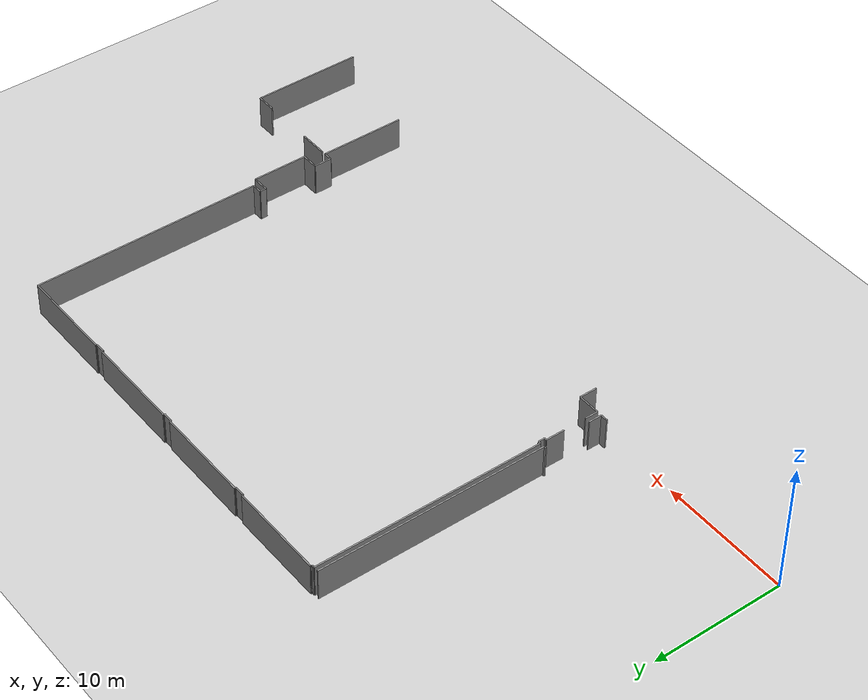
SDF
<sdf version="1.6">
 <world name="default">
  <model name="ground_plane">
   <static>1</static>
   <link name="link">
    <collision name="collision">
     <geometry><plane><normal>0 0 1</normal><size>100 100</size></plane></geometry>
     <surface><friction><ode><mu>100</mu><mu2>50</mu2></ode></friction></surface>
    </collision>
    <visual name="visual">
     <cast_shadows>0</cast_shadows>
     <geometry><plane><normal>0 0 1</normal><size>100 100</size></plane></geometry>
     <material>
      <script><uri>file://media/materials/scripts/gazebo.material</uri><name>Gazebo/Grey</name></script>
     </material>
    </visual>
   </link>
  </model>
  <model name="50057023">
   <static>1</static>
   <link name="Wall_98">
    <collision name="Wall_98_Collision">
     <geometry><box><size>17.4715691257 0.1 2.5</size></box></geometry>
     <pose>8.73578456286 0 1.25 0 0 0</pose>
    </collision>
    <visual name="Wall_98_Visual">
     <pose>8.73578456286 0 1.25 0 0 0</pose>
     <geometry><box><size>17.4715691257 0.1 2.5</size></box></geometry>
     <material>
      <script><uri>file://media/materials/scripts/gazebo.material</uri><name>Gazebo/Grey</name></script>
      <ambient>1 1 1 1</ambient>
     </material>
    </visual>
    <pose>71.8441507746 -0.122937470454 0 0 0 -1.57079632679</pose>
   </link>
   <link name="Wall_99">
    <collision name="Wall_99_Collision">
     <geometry><box><size>0.203163675399 0.1 2.5</size></box></geometry>
     <pose>0.1015818377 0 1.25 0 0 0</pose>
    </collision>
    <visual name="Wall_99_Visual">
     <pose>0.1015818377 0 1.25 0 0 0</pose>
     <geometry><box><size>0.203163675399 0.1 2.5</size></box></geometry>
     <material>
      <script><uri>file://media/materials/scripts/gazebo.material</uri><name>Gazebo/Grey</name></script>
      <ambient>1 1 1 1</ambient>
     </material>
    </visual>
    <pose>71.8441507746 -17.5945065962 0 0 0 3.14159265359</pose>
   </link>
   <link name="Wall_129">
    <collision name="Wall_129_Collision">
     <geometry><box><size>1.00289093165 0.1 2.5</size></box></geometry>
     <pose>0.501445465825 0 1.25 0 0 0</pose>
    </collision>
    <visual name="Wall_129_Visual">
     <pose>0.501445465825 0 1.25 0 0 0</pose>
     <geometry><box><size>1.00289093165 0.1 2.5</size></box></geometry>
     <material>
      <script><uri>file://media/materials/scripts/gazebo.material</uri><name>Gazebo/Grey</name></script>
      <ambient>1 1 1 1</ambient>
     </material>
    </visual>
    <pose>71.8352789984 -21.2718578387 0 0 0 -1.57079632679</pose>
   </link>
   <link name="Wall_130">
    <collision name="Wall_130_Collision">
     <geometry><box><size>0.57146912812 0.1 2.5</size></box></geometry>
     <pose>0.28573456406 0 1.25 0 0 0</pose>
    </collision>
    <visual name="Wall_130_Visual">
     <pose>0.28573456406 0 1.25 0 0 0</pose>
     <geometry><box><size>0.57146912812 0.1 2.5</size></box></geometry>
     <material>
      <script><uri>file://media/materials/scripts/gazebo.material</uri><name>Gazebo/Grey</name></script>
      <ambient>1 1 1 1</ambient>
     </material>
    </visual>
    <pose>71.8352789984 -22.2747487703 0 0 0 3.14159265359</pose>
   </link>
   <link name="Wall_379">
    <collision name="Wall_379_Collision">
     <geometry><box><size>1.33330122595 0.1 2.5</size></box></geometry>
     <pose>0.666650612976 0 1.25 0 0 0</pose>
    </collision>
    <visual name="Wall_379_Visual">
     <pose>0.666650612976 0 1.25 0 0 0</pose>
     <geometry><box><size>1.33330122595 0.1 2.5</size></box></geometry>
     <material>
      <script><uri>file://media/materials/scripts/gazebo.material</uri><name>Gazebo/Grey</name></script>
      <ambient>1 1 1 1</ambient>
     </material>
    </visual>
    <pose>73.9159640009 -23.6112184878 0 0 0 1.57079632679</pose>
   </link>
   <link name="Wall_380">
    <collision name="Wall_380_Collision">
     <geometry><box><size>1.69995906309 0.1 2.5</size></box></geometry>
     <pose>0.849979531545 0 1.25 0 0 0</pose>
    </collision>
    <visual name="Wall_380_Visual">
     <pose>0.849979531545 0 1.25 0 0 0</pose>
     <geometry><box><size>1.69995906309 0.1 2.5</size></box></geometry>
     <material>
      <script><uri>file://media/materials/scripts/gazebo.material</uri><name>Gazebo/Grey</name></script>
      <ambient>1 1 1 1</ambient>
     </material>
    </visual>
    <pose>73.9159640009 -22.2779172618 0 0 0 3.14159265359</pose>
   </link>
   <link name="Wall_381">
    <collision name="Wall_381_Collision">
     <geometry><box><size>1.00010265912 0.1 2.5</size></box></geometry>
     <pose>0.500051329562 0 1.25 0 0 0</pose>
    </collision>
    <visual name="Wall_381_Visual">
     <pose>0.500051329562 0 1.25 0 0 0</pose>
     <geometry><box><size>1.00010265912 0.1 2.5</size></box></geometry>
     <material>
      <script><uri>file://media/materials/scripts/gazebo.material</uri><name>Gazebo/Grey</name></script>
      <ambient>1 1 1 1</ambient>
     </material>
    </visual>
    <pose>72.2160049378 -22.2779172618 0 0 0 1.57079632679</pose>
   </link>
   <link name="Wall_382">
    <collision name="Wall_382_Collision">
     <geometry><box><size>1.45661891539 0.1 2.5</size></box></geometry>
     <pose>0.728309457694 0 1.25 0 0 0</pose>
    </collision>
    <visual name="Wall_382_Visual">
     <pose>0.728309457694 0 1.25 0 0 0</pose>
     <geometry><box><size>1.45661891539 0.1 2.5</size></box></geometry>
     <material>
      <script><uri>file://media/materials/scripts/gazebo.material</uri><name>Gazebo/Grey</name></script>
      <ambient>1 1 1 1</ambient>
     </material>
    </visual>
    <pose>72.2160049378 -19.5257655392 0 0 0 1.57079632679</pose>
   </link>
   <link name="Wall_383">
    <collision name="Wall_383_Collision">
     <geometry><box><size>0.175280950142 0.1 2.5</size></box></geometry>
     <pose>0.0876404750709 0 1.25 0 0 0</pose>
    </collision>
    <visual name="Wall_383_Visual">
     <pose>0.0876404750709 0 1.25 0 0 0</pose>
     <geometry><box><size>0.175280950142 0.1 2.5</size></box></geometry>
     <material>
      <script><uri>file://media/materials/scripts/gazebo.material</uri><name>Gazebo/Grey</name></script>
      <ambient>1 1 1 1</ambient>
     </material>
    </visual>
    <pose>72.2160049378 -18.0691466238 0 0 0 0.0</pose>
   </link>
   <link name="Wall_384">
    <collision name="Wall_384_Collision">
     <geometry><box><size>0.474006329379 0.1 2.5</size></box></geometry>
     <pose>0.237003164689 0 1.25 0 0 0</pose>
    </collision>
    <visual name="Wall_384_Visual">
     <pose>0.237003164689 0 1.25 0 0 0</pose>
     <geometry><box><size>0.474006329379 0.1 2.5</size></box></geometry>
     <material>
      <script><uri>file://media/materials/scripts/gazebo.material</uri><name>Gazebo/Grey</name></script>
      <ambient>1 1 1 1</ambient>
     </material>
    </visual>
    <pose>72.3912858879 -18.0691466238 0 0 0 1.57079632679</pose>
   </link>
   <link name="Wall_385">
    <collision name="Wall_385_Collision">
     <geometry><box><size>0.18896883345 0.1 2.5</size></box></geometry>
     <pose>0.0944844167251 0 1.25 0 0 0</pose>
    </collision>
    <visual name="Wall_385_Visual">
     <pose>0.0944844167251 0 1.25 0 0 0</pose>
     <geometry><box><size>0.18896883345 0.1 2.5</size></box></geometry>
     <material>
      <script><uri>file://media/materials/scripts/gazebo.material</uri><name>Gazebo/Grey</name></script>
      <ambient>1 1 1 1</ambient>
     </material>
    </visual>
    <pose>72.3912858879 -17.5951402945 0 0 0 3.14159265359</pose>
   </link>
   <link name="Wall_386">
    <collision name="Wall_386_Collision">
     <geometry><box><size>17.4659925807 0.1 2.5</size></box></geometry>
     <pose>8.73299629033 0 1.25 0 0 0</pose>
    </collision>
    <visual name="Wall_386_Visual">
     <pose>8.73299629033 0 1.25 0 0 0</pose>
     <geometry><box><size>17.4659925807 0.1 2.5</size></box></geometry>
     <material>
      <script><uri>file://media/materials/scripts/gazebo.material</uri><name>Gazebo/Grey</name></script>
      <ambient>1 1 1 1</ambient>
     </material>
    </visual>
    <pose>72.2023170545 -17.5951402945 0 0 0 1.57079632679</pose>
   </link>
   <link name="Wall_387">
    <collision name="Wall_387_Collision">
     <geometry><box><size>0.212415670599 0.1 2.5</size></box></geometry>
     <pose>0.106207835299 0 1.25 0 0 0</pose>
    </collision>
    <visual name="Wall_387_Visual">
     <pose>0.106207835299 0 1.25 0 0 0</pose>
     <geometry><box><size>0.212415670599 0.1 2.5</size></box></geometry>
     <material>
      <script><uri>file://media/materials/scripts/gazebo.material</uri><name>Gazebo/Grey</name></script>
      <ambient>1 1 1 1</ambient>
     </material>
    </visual>
    <pose>72.2023170545 -0.129147713807 0 0 0 0.0</pose>
   </link>
   <link name="Wall_388">
    <collision name="Wall_388_Collision">
     <geometry><box><size>0.105447397338 0.1 2.5</size></box></geometry>
     <pose>0.0527236986689 0 1.25 0 0 0</pose>
    </collision>
    <visual name="Wall_388_Visual">
     <pose>0.0527236986689 0 1.25 0 0 0</pose>
     <geometry><box><size>0.105447397338 0.1 2.5</size></box></geometry>
     <material>
      <script><uri>file://media/materials/scripts/gazebo.material</uri><name>Gazebo/Grey</name></script>
      <ambient>1 1 1 1</ambient>
     </material>
    </visual>
    <pose>72.4147327251 -0.129147713807 0 0 0 1.57079632679</pose>
   </link>
   <link name="Wall_389">
    <collision name="Wall_389_Collision">
     <geometry><box><size>7.26826603669 0.1 2.5</size></box></geometry>
     <pose>3.63413301834 0 1.25 0 0 0</pose>
    </collision>
    <visual name="Wall_389_Visual">
     <pose>3.63413301834 0 1.25 0 0 0</pose>
     <geometry><box><size>7.26826603669 0.1 2.5</size></box></geometry>
     <material>
      <script><uri>file://media/materials/scripts/gazebo.material</uri><name>Gazebo/Grey</name></script>
      <ambient>1 1 1 1</ambient>
     </material>
    </visual>
    <pose>72.4147327251 -0.0237003164689 0 0 0 0.0</pose>
   </link>
   <link name="Wall_390">
    <collision name="Wall_390_Collision">
     <geometry><box><size>0.0849155723753 0.1 2.5</size></box></geometry>
     <pose>0.0424577861877 0 1.25 0 0 0</pose>
    </collision>
    <visual name="Wall_390_Visual">
     <pose>0.0424577861877 0 1.25 0 0 0</pose>
     <geometry><box><size>0.0849155723753 0.1 2.5</size></box></geometry>
     <material>
      <script><uri>file://media/materials/scripts/gazebo.material</uri><name>Gazebo/Grey</name></script>
      <ambient>1 1 1 1</ambient>
     </material>
    </visual>
    <pose>79.6829987618 -0.0237003164689 0 0 0 -1.57079632679</pose>
   </link>
   <link name="Wall_391">
    <collision name="Wall_391_Collision">
     <geometry><box><size>0.775393241481 0.1 2.5</size></box></geometry>
     <pose>0.38769662074 0 1.25 0 0 0</pose>
    </collision>
    <visual name="Wall_391_Visual">
     <pose>0.38769662074 0 1.25 0 0 0</pose>
     <geometry><box><size>0.775393241481 0.1 2.5</size></box></geometry>
     <material>
      <script><uri>file://media/materials/scripts/gazebo.material</uri><name>Gazebo/Grey</name></script>
      <ambient>1 1 1 1</ambient>
     </material>
    </visual>
    <pose>79.6829987618 -0.108615888844 0 0 0 0.0</pose>
   </link>
   <link name="Wall_392">
    <collision name="Wall_392_Collision">
     <geometry><box><size>0.0941675675744 0.1 2.5</size></box></geometry>
     <pose>0.0470837837872 0 1.25 0 0 0</pose>
    </collision>
    <visual name="Wall_392_Visual">
     <pose>0.0470837837872 0 1.25 0 0 0</pose>
     <geometry><box><size>0.0941675675744 0.1 2.5</size></box></geometry>
     <material>
      <script><uri>file://media/materials/scripts/gazebo.material</uri><name>Gazebo/Grey</name></script>
      <ambient>1 1 1 1</ambient>
     </material>
    </visual>
    <pose>80.4583920032 -0.108615888844 0 0 0 1.57079632679</pose>
   </link>
   <link name="Wall_393">
    <collision name="Wall_393_Collision">
     <geometry><box><size>7.29716267923 0.1 2.5</size></box></geometry>
     <pose>3.64858133961 0 1.25 0 0 0</pose>
    </collision>
    <visual name="Wall_393_Visual">
     <pose>3.64858133961 0 1.25 0 0 0</pose>
     <geometry><box><size>7.29716267923 0.1 2.5</size></box></geometry>
     <material>
      <script><uri>file://media/materials/scripts/gazebo.material</uri><name>Gazebo/Grey</name></script>
      <ambient>1 1 1 1</ambient>
     </material>
    </visual>
    <pose>80.4583920032 -0.0144483212698 0 0 0 0.0</pose>
   </link>
   <link name="Wall_394">
    <collision name="Wall_394_Collision">
     <geometry><box><size>0.0941675675744 0.1 2.5</size></box></geometry>
     <pose>0.0470837837872 0 1.25 0 0 0</pose>
    </collision>
    <visual name="Wall_394_Visual">
     <pose>0.0470837837872 0 1.25 0 0 0</pose>
     <geometry><box><size>0.0941675675744 0.1 2.5</size></box></geometry>
     <material>
      <script><uri>file://media/materials/scripts/gazebo.material</uri><name>Gazebo/Grey</name></script>
      <ambient>1 1 1 1</ambient>
     </material>
    </visual>
    <pose>87.7555546825 -0.0144483212698 0 0 0 -1.57079632679</pose>
   </link>
   <link name="Wall_395">
    <collision name="Wall_395_Collision">
     <geometry><box><size>0.771464312013 0.1 2.5</size></box></geometry>
     <pose>0.385732156006 0 1.25 0 0 0</pose>
    </collision>
    <visual name="Wall_395_Visual">
     <pose>0.385732156006 0 1.25 0 0 0</pose>
     <geometry><box><size>0.771464312013 0.1 2.5</size></box></geometry>
     <material>
      <script><uri>file://media/materials/scripts/gazebo.material</uri><name>Gazebo/Grey</name></script>
      <ambient>1 1 1 1</ambient>
     </material>
    </visual>
    <pose>87.7555546825 -0.108615888844 0 0 0 0.0</pose>
   </link>
   <link name="Wall_396">
    <collision name="Wall_396_Collision">
     <geometry><box><size>0.0987301953438 0.1 2.5</size></box></geometry>
     <pose>0.0493650976719 0 1.25 0 0 0</pose>
    </collision>
    <visual name="Wall_396_Visual">
     <pose>0.0493650976719 0 1.25 0 0 0</pose>
     <geometry><box><size>0.0987301953438 0.1 2.5</size></box></geometry>
     <material>
      <script><uri>file://media/materials/scripts/gazebo.material</uri><name>Gazebo/Grey</name></script>
      <ambient>1 1 1 1</ambient>
     </material>
    </visual>
    <pose>88.5270189945 -0.108615888844 0 0 0 1.57079632679</pose>
   </link>
   <link name="Wall_397">
    <collision name="Wall_397_Collision">
     <geometry><box><size>7.3154131903 0.1 2.5</size></box></geometry>
     <pose>3.65770659515 0 1.25 0 0 0</pose>
    </collision>
    <visual name="Wall_397_Visual">
     <pose>3.65770659515 0 1.25 0 0 0</pose>
     <geometry><box><size>7.3154131903 0.1 2.5</size></box></geometry>
     <material>
      <script><uri>file://media/materials/scripts/gazebo.material</uri><name>Gazebo/Grey</name></script>
      <ambient>1 1 1 1</ambient>
     </material>
    </visual>
    <pose>88.5270189945 -0.00988569350041 0 0 0 0.0</pose>
   </link>
   <link name="Wall_398">
    <collision name="Wall_398_Collision">
     <geometry><box><size>0.0987301953438 0.1 2.5</size></box></geometry>
     <pose>0.0493650976719 0 1.25 0 0 0</pose>
    </collision>
    <visual name="Wall_398_Visual">
     <pose>0.0493650976719 0 1.25 0 0 0</pose>
     <geometry><box><size>0.0987301953438 0.1 2.5</size></box></geometry>
     <material>
      <script><uri>file://media/materials/scripts/gazebo.material</uri><name>Gazebo/Grey</name></script>
      <ambient>1 1 1 1</ambient>
     </material>
    </visual>
    <pose>95.8424321848 -0.00988569350041 0 0 0 -1.57079632679</pose>
   </link>
   <link name="Wall_399">
    <collision name="Wall_399_Collision">
     <geometry><box><size>0.724697377376 0.1 2.5</size></box></geometry>
     <pose>0.362348688688 0 1.25 0 0 0</pose>
    </collision>
    <visual name="Wall_399_Visual">
     <pose>0.362348688688 0 1.25 0 0 0</pose>
     <geometry><box><size>0.724697377376 0.1 2.5</size></box></geometry>
     <material>
      <script><uri>file://media/materials/scripts/gazebo.material</uri><name>Gazebo/Grey</name></script>
      <ambient>1 1 1 1</ambient>
     </material>
    </visual>
    <pose>95.8424321848 -0.108615888844 0 0 0 0.0</pose>
   </link>
   <link name="Wall_400">
    <collision name="Wall_400_Collision">
     <geometry><box><size>0.101391728209 0.1 2.5</size></box></geometry>
     <pose>0.0506958641047 0 1.25 0 0 0</pose>
    </collision>
    <visual name="Wall_400_Visual">
     <pose>0.0506958641047 0 1.25 0 0 0</pose>
     <geometry><box><size>0.101391728209 0.1 2.5</size></box></geometry>
     <material>
      <script><uri>file://media/materials/scripts/gazebo.material</uri><name>Gazebo/Grey</name></script>
      <ambient>1 1 1 1</ambient>
     </material>
    </visual>
    <pose>96.5671295622 -0.108615888844 0 0 0 1.57079632679</pose>
   </link>
   <link name="Wall_401">
    <collision name="Wall_401_Collision">
     <geometry><box><size>7.31883516113 0.1 2.5</size></box></geometry>
     <pose>3.65941758057 0 1.25 0 0 0</pose>
    </collision>
    <visual name="Wall_401_Visual">
     <pose>3.65941758057 0 1.25 0 0 0</pose>
     <geometry><box><size>7.31883516113 0.1 2.5</size></box></geometry>
     <material>
      <script><uri>file://media/materials/scripts/gazebo.material</uri><name>Gazebo/Grey</name></script>
      <ambient>1 1 1 1</ambient>
     </material>
    </visual>
    <pose>96.5671295622 -0.00722416063492 0 0 0 0.0</pose>
   </link>
   <link name="Wall_402">
    <collision name="Wall_402_Collision">
     <geometry><box><size>17.5506546737 0.1 2.5</size></box></geometry>
     <pose>8.77532733686 0 1.25 0 0 0</pose>
    </collision>
    <visual name="Wall_402_Visual">
     <pose>8.77532733686 0 1.25 0 0 0</pose>
     <geometry><box><size>17.5506546737 0.1 2.5</size></box></geometry>
     <material>
      <script><uri>file://media/materials/scripts/gazebo.material</uri><name>Gazebo/Grey</name></script>
      <ambient>1 1 1 1</ambient>
     </material>
    </visual>
    <pose>103.885964723 -0.00722416063492 0 0 0 -1.57079632679</pose>
   </link>
   <link name="Wall_403">
    <collision name="Wall_403_Collision">
     <geometry><box><size>0.784898716 0.1 2.5</size></box></geometry>
     <pose>0.392449358 0 1.25 0 0 0</pose>
    </collision>
    <visual name="Wall_403_Visual">
     <pose>0.392449358 0 1.25 0 0 0</pose>
     <geometry><box><size>0.784898716 0.1 2.5</size></box></geometry>
     <material>
      <script><uri>file://media/materials/scripts/gazebo.material</uri><name>Gazebo/Grey</name></script>
      <ambient>1 1 1 1</ambient>
     </material>
    </visual>
    <pose>103.885964723 -17.5578788343 0 0 0 3.14159265359</pose>
   </link>
   <link name="Wall_404">
    <collision name="Wall_404_Collision">
     <geometry><box><size>0.480977010693 0.1 2.5</size></box></geometry>
     <pose>0.240488505347 0 1.25 0 0 0</pose>
    </collision>
    <visual name="Wall_404_Visual">
     <pose>0.240488505347 0 1.25 0 0 0</pose>
     <geometry><box><size>0.480977010693 0.1 2.5</size></box></geometry>
     <material>
      <script><uri>file://media/materials/scripts/gazebo.material</uri><name>Gazebo/Grey</name></script>
      <ambient>1 1 1 1</ambient>
     </material>
    </visual>
    <pose>103.101066007 -17.5578788343 0 0 0 -1.57079632679</pose>
   </link>
   <link name="Wall_405">
    <collision name="Wall_405_Collision">
     <geometry><box><size>1.29718042278 0.1 2.5</size></box></geometry>
     <pose>0.648590211389 0 1.25 0 0 0</pose>
    </collision>
    <visual name="Wall_405_Visual">
     <pose>0.648590211389 0 1.25 0 0 0</pose>
     <geometry><box><size>1.29718042278 0.1 2.5</size></box></geometry>
     <material>
      <script><uri>file://media/materials/scripts/gazebo.material</uri><name>Gazebo/Grey</name></script>
      <ambient>1 1 1 1</ambient>
     </material>
    </visual>
    <pose>103.101066007 -18.038855845 0 0 0 0.0</pose>
   </link>
   <link name="Wall_406">
    <collision name="Wall_406_Collision">
     <geometry><box><size>4.22245852128 0.1 2.5</size></box></geometry>
     <pose>2.11122926064 0 1.25 0 0 0</pose>
    </collision>
    <visual name="Wall_406_Visual">
     <pose>2.11122926064 0 1.25 0 0 0</pose>
     <geometry><box><size>4.22245852128 0.1 2.5</size></box></geometry>
     <material>
      <script><uri>file://media/materials/scripts/gazebo.material</uri><name>Gazebo/Grey</name></script>
      <ambient>1 1 1 1</ambient>
     </material>
    </visual>
    <pose>104.39824643 -18.038855845 0 0 0 -1.57079632679</pose>
   </link>
   <link name="Wall_407">
    <collision name="Wall_407_Collision">
     <geometry><box><size>1.30174305055 0.1 2.5</size></box></geometry>
     <pose>0.650871525274 0 1.25 0 0 0</pose>
    </collision>
    <visual name="Wall_407_Visual">
     <pose>0.650871525274 0 1.25 0 0 0</pose>
     <geometry><box><size>1.30174305055 0.1 2.5</size></box></geometry>
     <material>
      <script><uri>file://media/materials/scripts/gazebo.material</uri><name>Gazebo/Grey</name></script>
      <ambient>1 1 1 1</ambient>
     </material>
    </visual>
    <pose>104.39824643 -22.2613143663 0 0 0 3.14159265359</pose>
   </link>
   <link name="Wall_408">
    <collision name="Wall_408_Collision">
     <geometry><box><size>1.34698910926 0.1 2.5</size></box></geometry>
     <pose>0.67349455463 0 1.25 0 0 0</pose>
    </collision>
    <visual name="Wall_408_Visual">
     <pose>0.67349455463 0 1.25 0 0 0</pose>
     <geometry><box><size>1.34698910926 0.1 2.5</size></box></geometry>
     <material>
      <script><uri>file://media/materials/scripts/gazebo.material</uri><name>Gazebo/Grey</name></script>
      <ambient>1 1 1 1</ambient>
     </material>
    </visual>
    <pose>103.09650338 -22.2613143663 0 0 0 -1.57079632679</pose>
   </link>
   <link name="Wall_409">
    <collision name="Wall_409_Collision">
     <geometry><box><size>0.675015430554 0.1 2.5</size></box></geometry>
     <pose>0.337507715277 0 1.25 0 0 0</pose>
    </collision>
    <visual name="Wall_409_Visual">
     <pose>0.337507715277 0 1.25 0 0 0</pose>
     <geometry><box><size>0.675015430554 0.1 2.5</size></box></geometry>
     <material>
      <script><uri>file://media/materials/scripts/gazebo.material</uri><name>Gazebo/Grey</name></script>
      <ambient>1 1 1 1</ambient>
     </material>
    </visual>
    <pose>103.09650338 -23.6083034756 0 0 0 0.0</pose>
   </link>
   <link name="Wall_410">
    <collision name="Wall_410_Collision">
     <geometry><box><size>6.55294739417 0.1 2.5</size></box></geometry>
     <pose>3.27647369708 0 1.25 0 0 0</pose>
    </collision>
    <visual name="Wall_410_Visual">
     <pose>3.27647369708 0 1.25 0 0 0</pose>
     <geometry><box><size>6.55294739417 0.1 2.5</size></box></geometry>
     <material>
      <script><uri>file://media/materials/scripts/gazebo.material</uri><name>Gazebo/Grey</name></script>
      <ambient>1 1 1 1</ambient>
     </material>
    </visual>
    <pose>103.77151881 -23.6083034756 0 0 0 -1.57079632679</pose>
   </link>
   <link name="Wall_421">
    <collision name="Wall_421_Collision">
     <geometry><box><size>2.24633373848 0.1 2.5</size></box></geometry>
     <pose>1.12316686924 0 1.25 0 0 0</pose>
    </collision>
    <visual name="Wall_421_Visual">
     <pose>1.12316686924 0 1.25 0 0 0</pose>
     <geometry><box><size>2.24633373848 0.1 2.5</size></box></geometry>
     <material>
      <script><uri>file://media/materials/scripts/gazebo.material</uri><name>Gazebo/Grey</name></script>
      <ambient>1 1 1 1</ambient>
     </material>
    </visual>
    <pose>104.045403216 -23.5972771251 0 0 0 0.0</pose>
   </link>
   <link name="Wall_422">
    <collision name="Wall_422_Collision">
     <geometry><box><size>1.5031323707 0.1 2.5</size></box></geometry>
     <pose>0.751566185352 0 1.25 0 0 0</pose>
    </collision>
    <visual name="Wall_422_Visual">
     <pose>0.751566185352 0 1.25 0 0 0</pose>
     <geometry><box><size>1.5031323707 0.1 2.5</size></box></geometry>
     <material>
      <script><uri>file://media/materials/scripts/gazebo.material</uri><name>Gazebo/Grey</name></script>
      <ambient>1 1 1 1</ambient>
     </material>
    </visual>
    <pose>110.328395134 -23.5972771251 0 0 0 0.0</pose>
   </link>
   <link name="Wall_423">
    <collision name="Wall_423_Collision">
     <geometry><box><size>8.3972629303 0.1 2.5</size></box></geometry>
     <pose>4.19863146515 0 1.25 0 0 0</pose>
    </collision>
    <visual name="Wall_423_Visual">
     <pose>4.19863146515 0 1.25 0 0 0</pose>
     <geometry><box><size>8.3972629303 0.1 2.5</size></box></geometry>
     <material>
      <script><uri>file://media/materials/scripts/gazebo.material</uri><name>Gazebo/Grey</name></script>
      <ambient>1 1 1 1</ambient>
     </material>
    </visual>
    <pose>111.831527504 -23.5972771251 0 0 0 -1.57079632679</pose>
   </link>
   <pose>-55.9 23.1541768322 0 0 0 0</pose>
  </model>
 </world>
</sdf>
